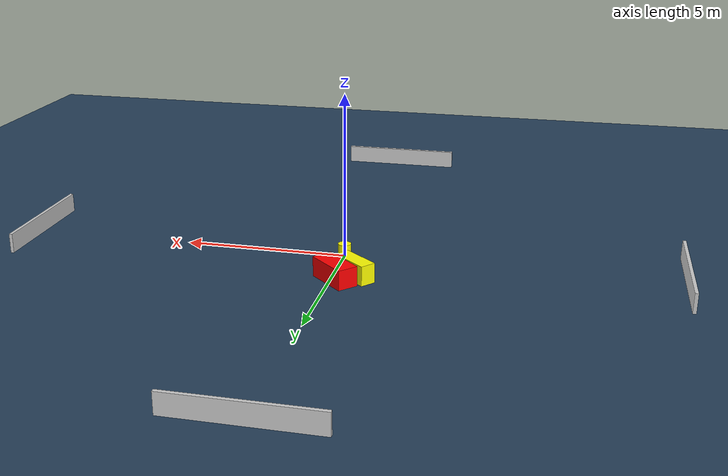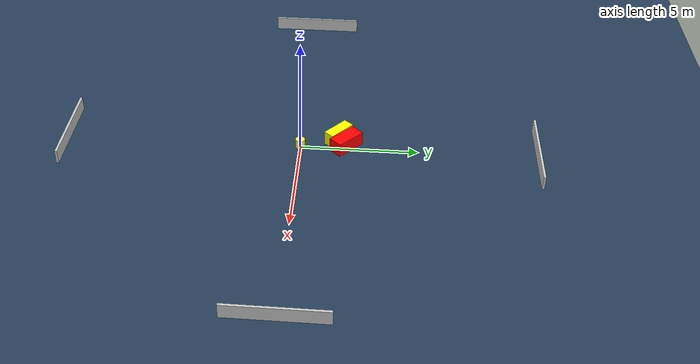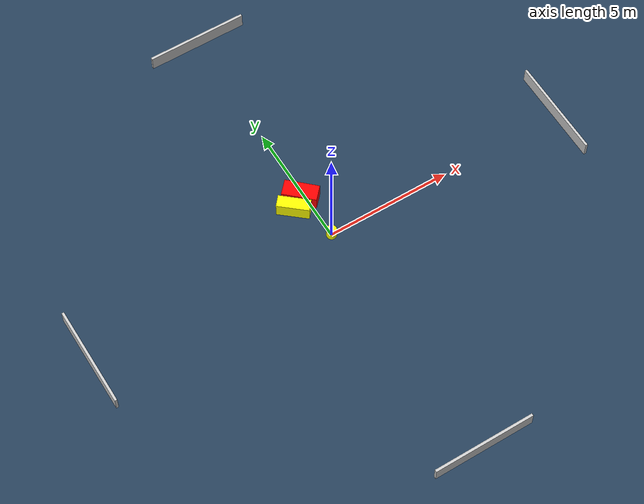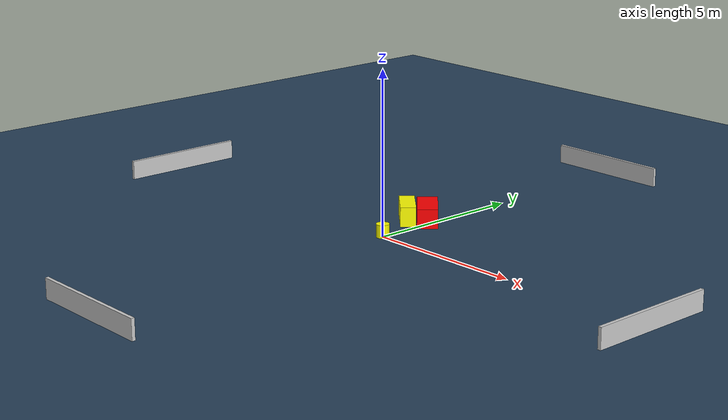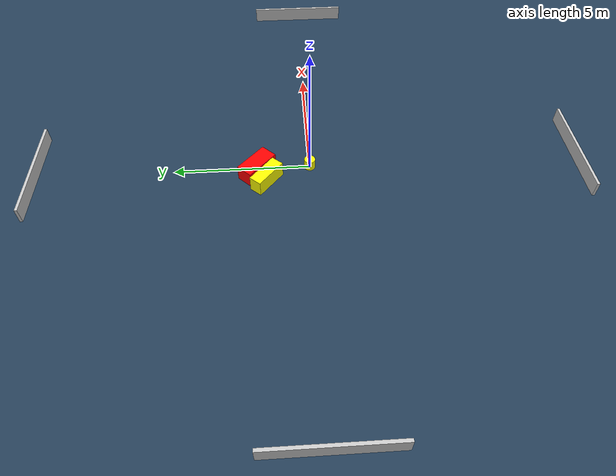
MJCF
<?xml version="1.0" ?>
<mujoco model="generated_environment">
  <option timestep="0.01" integrator="RK4" cone="elliptic"/>
  <default>
    <geom density="1"/>
  </default>
  <asset>
    <texture builtin="gradient" height="3072" name="skybox" rgb1="0.3 0.5 0.7" rgb2="0 0 0" type="skybox" width="512"/>
    <texture builtin="checker" height="300" name="groundplane" rgb1="0.2 0.3 0.4" rgb2="0.1 0.2 0.3" type="2d" width="300"/>
    <material name="groundplane" reflectance="0.2" texrepeat="5 5" texture="groundplane"/>
  </asset>
  <worldbody>
    <light dir="0 0 -1" directional="true" pos="0 0 1.5"/>
    <geom condim="3" friction="0.5 0.005 0.001" material="groundplane" name="floor" pos="0 0 0" size="0 0 0.05" type="plane"/>
    <body name="walls">
      <geom name="wall_1" condim="4" pos="-10.0 0.0 0.3" rgba="0.800000011920929 0.800000011920929 0.800000011920929 1.0" size="0.05 2.0 0.3" type="box"/>
      <geom name="wall_2" condim="4" pos="10.0 0.0 0.3" rgba="0.800000011920929 0.800000011920929 0.800000011920929 1.0" size="0.05 2.0 0.3" type="box"/>
      <geom name="wall_3" condim="4" pos="0.0 -10.0 0.3" rgba="0.800000011920929 0.800000011920929 0.800000011920929 1.0" size="2.0 0.05 0.3" type="box"/>
      <geom name="wall_4" condim="4" pos="0.0 10.0 0.3" rgba="0.800000011920929 0.800000011920929 0.800000011920929 1.0" size="2.0 0.05 0.3" type="box"/>
    </body>
    <body name="robot">
      <joint name="joint_x" type="slide" pos="0 0 0" axis="1 0 0"/>
      <joint name="joint_y" type="slide" pos="0 0 0" axis="0 1 0"/>
      <geom name="robot" type="cylinder" pos="0.0 0.0 0.2" size="0.2 0.2 0.0" mass="5.0" friction="1.0 0.005 0.0001" condim="4" rgba="1.0 1.0 0.0 1.0"/>
    </body>
    <body name="obstacle_1_movable">
      <geom name="obstacle_1_movable" condim="4" pos="-0.6566462580435839 1.5933918910002918 0.3" euler="0 0 319.54479148778955" friction="0.0 0.005 0.001" rgba="1.0 1.0 0.0 1.0" size="0.6279475231973652 0.2371447217629492 0.3" type="box" mass="0.1"/>
      <joint type="free"/>
    </body>
    <body name="obstacle_2_static">
      <geom name="obstacle_2_static" condim="4" pos="-0.15197565767932372 1.9424971287499608 0.3" euler="0 0 46.9086713141011" friction="0.0 0.005 0.001" rgba="1.0 0.0 0.0 1.0" size="0.3159604541135194 0.6677110706778644 0.3" type="box"/>
    </body>
  </worldbody>
  <actuator>
    <motor name="actuator_x" joint="joint_x" gear="1" ctrlrange="-1 1"/>
    <motor name="actuator_y" joint="joint_y" gear="1" ctrlrange="-1 1"/>
  </actuator>
</mujoco>
